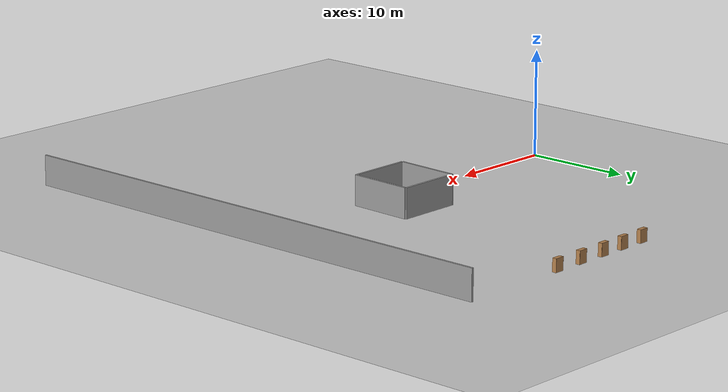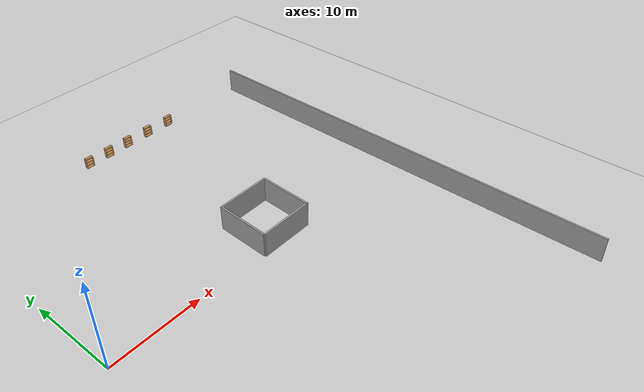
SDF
<sdf version="1.7">
 <world name="default">
  <model name="ground_plane">
   <static>1</static>
   <link name="link">
    <collision name="collision">
     <geometry><plane><normal>0 0 1</normal><size>100 100</size></plane></geometry>
     <surface>
      <contact><collide_bitmask>65535</collide_bitmask></contact>
      <friction><ode><mu>100</mu><mu2>50</mu2></ode></friction>
     </surface>
    </collision>
    <visual name="visual">
     <cast_shadows>0</cast_shadows>
     <geometry><plane><normal>0 0 1</normal><size>100 100</size></plane></geometry>
     <material>
      <script><uri>file://media/materials/scripts/gazebo.material</uri><name>Gazebo/Grey</name></script>
     </material>
    </visual>
   </link>
  </model>
  <model name="grey_wall_long_clone">
   <static>1</static>
   <link name="link">
    <pose>0 0 1.4 0 -0 0</pose>
    <collision name="collision"><geometry><box><size>50 0.2 2.8</size></box></geometry></collision>
    <visual name="visual">
     <cast_shadows>0</cast_shadows>
     <geometry><box><size>50 0.2 2.8</size></box></geometry>
     <material>
      <script>
       <uri>model://grey_wall_long/materials/scripts</uri>
       <uri>model://grey_wall_long/materials/textures</uri>
       <name>vrc/grey_wall_long</name>
      </script>
     </material>
    </visual>
   </link>
   <pose>37.6995 -0.475096 0 0 0 -1.56707</pose>
  </model>
  <model name="grey_wall_media_clone_2_clone">
   <static>1</static>
   <link name="link">
    <pose>0 0 1.4 0 -0 0</pose>
    <collision name="collision"><geometry><box><size>6 0.2 2.8</size></box></geometry></collision>
    <visual name="visual">
     <cast_shadows>0</cast_shadows>
     <geometry><box><size>6 0.2 2.8</size></box></geometry>
     <material>
      <script>
       <uri>model://grey_wall_media/materials/scripts</uri>
       <uri>model://grey_wall_media/materials/textures</uri>
       <name>vrc/grey_wall_media</name>
      </script>
     </material>
    </visual>
   </link>
   <pose>20.7771 -0.668211 0.00987 0 -0 0</pose>
  </model>
  <model name="grey_wall_media_clone_2_clone_clone">
   <static>1</static>
   <link name="link">
    <pose>0 0 1.4 0 -0 0</pose>
    <collision name="collision"><geometry><box><size>6 0.2 2.8</size></box></geometry></collision>
    <visual name="visual">
     <cast_shadows>0</cast_shadows>
     <geometry><box><size>6 0.2 2.8</size></box></geometry>
     <material>
      <script>
       <uri>model://grey_wall_media/materials/scripts</uri>
       <uri>model://grey_wall_media/materials/textures</uri>
       <name>vrc/grey_wall_media</name>
      </script>
     </material>
    </visual>
   </link>
   <pose>20.9663 5.32207 0.00987 0 -0 0</pose>
  </model>
  <model name="grey_wall_media_clone_2_clone_clone_0">
   <static>1</static>
   <link name="link">
    <pose>0 0 1.4 0 -0 0</pose>
    <collision name="collision"><geometry><box><size>6 0.2 2.8</size></box></geometry></collision>
    <visual name="visual">
     <cast_shadows>0</cast_shadows>
     <geometry><box><size>6 0.2 2.8</size></box></geometry>
     <material>
      <script>
       <uri>model://grey_wall_media/materials/scripts</uri>
       <uri>model://grey_wall_media/materials/textures</uri>
       <name>vrc/grey_wall_media</name>
      </script>
     </material>
    </visual>
   </link>
   <pose>17.8444 2.39168 0.00987 0 0 -1.60343</pose>
  </model>
  <model name="grey_wall_media_clone_2_clone_clone_0_clone">
   <static>1</static>
   <link name="link">
    <pose>0 0 1.4 0 -0 0</pose>
    <collision name="collision"><geometry><box><size>6 0.2 2.8</size></box></geometry></collision>
    <visual name="visual">
     <cast_shadows>0</cast_shadows>
     <geometry><box><size>6 0.2 2.8</size></box></geometry>
     <material>
      <script>
       <uri>model://grey_wall_media/materials/scripts</uri>
       <uri>model://grey_wall_media/materials/textures</uri>
       <name>vrc/grey_wall_media</name>
      </script>
     </material>
    </visual>
   </link>
   <pose>23.857 2.28002 0.00987 0 0 -1.60343</pose>
  </model>
  <model name="Bookshelf_0">
   <static>1</static>
   <link name="link">
    <inertial><mass>1</mass></inertial>
    <collision name="back">
     <pose>0 0.005 0.6 0 -0 0</pose>
     <geometry><box><size>0.9 0.01 1.2</size></box></geometry>
    </collision>
    <visual name="visual1">
     <pose>0 0.005 0.6 0 -0 0</pose>
     <geometry><box><size>0.9 0.01 1.2</size></box></geometry>
     <material>
      <diffuse>1 1 1 1</diffuse>
      <script><uri>file://media/materials/scripts/gazebo.material</uri><name>Gazebo/Wood</name></script>
      <pbr><metal><albedo_map>model://Bookshelf/bookshelf_diffuse.jpg</albedo_map></metal></pbr>
     </material>
    </visual>
    <collision name="left_side">
     <pose>0.45 -0.195 0.6 0 -0 0</pose>
     <geometry><box><size>0.02 0.4 1.2</size></box></geometry>
    </collision>
    <visual name="visual2">
     <pose>0.45 -0.195 0.6 0 -0 0</pose>
     <geometry><box><size>0.02 0.4 1.2</size></box></geometry>
     <material>
      <diffuse>1 1 1 1</diffuse>
      <script><uri>file://media/materials/scripts/gazebo.material</uri><name>Gazebo/Wood</name></script>
      <pbr><metal><albedo_map>model://Bookshelf/bookshelf_diffuse.jpg</albedo_map></metal></pbr>
     </material>
    </visual>
    <collision name="right_side">
     <pose>-0.45 -0.195 0.6 0 -0 0</pose>
     <geometry><box><size>0.02 0.4 1.2</size></box></geometry>
    </collision>
    <visual name="visual3">
     <pose>-0.45 -0.195 0.6 0 -0 0</pose>
     <geometry><box><size>0.02 0.4 1.2</size></box></geometry>
     <material>
      <diffuse>1 1 1 1</diffuse>
      <script><uri>file://media/materials/scripts/gazebo.material</uri><name>Gazebo/Wood</name></script>
      <pbr><metal><albedo_map>model://Bookshelf/bookshelf_diffuse.jpg</albedo_map></metal></pbr>
     </material>
    </visual>
    <collision name="bottom">
     <pose>0 -0.195 0.03 0 -0 0</pose>
     <geometry><box><size>0.88 0.4 0.06</size></box></geometry>
    </collision>
    <visual name="visual4">
     <pose>0 -0.195 0.03 0 -0 0</pose>
     <geometry><box><size>0.88 0.4 0.06</size></box></geometry>
     <material>
      <diffuse>1 1 1 1</diffuse>
      <script><uri>file://media/materials/scripts/gazebo.material</uri><name>Gazebo/Wood</name></script>
      <pbr><metal><albedo_map>model://Bookshelf/bookshelf_diffuse.jpg</albedo_map></metal></pbr>
     </material>
    </visual>
    <collision name="top">
     <pose>0 -0.195 1.19 0 -0 0</pose>
     <geometry><box><size>0.88 0.4 0.02</size></box></geometry>
    </collision>
    <visual name="visual5">
     <pose>0 -0.195 1.19 0 -0 0</pose>
     <geometry><box><size>0.88 0.4 0.02</size></box></geometry>
     <material>
      <diffuse>1 1 1 1</diffuse>
      <script><uri>file://media/materials/scripts/gazebo.material</uri><name>Gazebo/Wood</name></script>
      <pbr><metal><albedo_map>model://Bookshelf/bookshelf_diffuse.jpg</albedo_map></metal></pbr>
     </material>
    </visual>
    <collision name="low_shelf">
     <pose>0 -0.195 0.43 0 -0 0</pose>
     <geometry><box><size>0.88 0.4 0.02</size></box></geometry>
    </collision>
    <visual name="visual6">
     <pose>0 -0.195 0.43 0 -0 0</pose>
     <geometry><box><size>0.88 0.4 0.02</size></box></geometry>
     <material>
      <diffuse>1 1 1 1</diffuse>
      <script><uri>file://media/materials/scripts/gazebo.material</uri><name>Gazebo/Wood</name></script>
      <pbr><metal><albedo_map>model://Bookshelf/bookshelf_diffuse.jpg</albedo_map></metal></pbr>
     </material>
    </visual>
    <collision name="high_shelf">
     <pose>0 -0.195 0.8 0 -0 0</pose>
     <geometry><box><size>0.88 0.4 0.02</size></box></geometry>
    </collision>
    <visual name="visual7">
     <pose>0 -0.195 0.8 0 -0 0</pose>
     <geometry><box><size>0.88 0.4 0.02</size></box></geometry>
     <material>
      <diffuse>1 1 1 1</diffuse>
      <script><uri>file://media/materials/scripts/gazebo.material</uri><name>Gazebo/Wood</name></script>
      <pbr><metal><albedo_map>model://Bookshelf/bookshelf_diffuse.jpg</albedo_map></metal></pbr>
     </material>
    </visual>
   </link>
   <pose>26.7566 24.5208 0 0 -0 0</pose>
  </model>
  <model name="Bookshelf_0_clone">
   <static>1</static>
   <link name="link">
    <inertial><mass>1</mass></inertial>
    <collision name="back">
     <pose>0 0.005 0.6 0 -0 0</pose>
     <geometry><box><size>0.9 0.01 1.2</size></box></geometry>
    </collision>
    <visual name="visual1">
     <pose>0 0.005 0.6 0 -0 0</pose>
     <geometry><box><size>0.9 0.01 1.2</size></box></geometry>
     <material>
      <diffuse>1 1 1 1</diffuse>
      <script><uri>file://media/materials/scripts/gazebo.material</uri><name>Gazebo/Wood</name></script>
      <pbr><metal><albedo_map>model://Bookshelf/bookshelf_diffuse.jpg</albedo_map></metal></pbr>
     </material>
    </visual>
    <collision name="left_side">
     <pose>0.45 -0.195 0.6 0 -0 0</pose>
     <geometry><box><size>0.02 0.4 1.2</size></box></geometry>
    </collision>
    <visual name="visual2">
     <pose>0.45 -0.195 0.6 0 -0 0</pose>
     <geometry><box><size>0.02 0.4 1.2</size></box></geometry>
     <material>
      <diffuse>1 1 1 1</diffuse>
      <script><uri>file://media/materials/scripts/gazebo.material</uri><name>Gazebo/Wood</name></script>
      <pbr><metal><albedo_map>model://Bookshelf/bookshelf_diffuse.jpg</albedo_map></metal></pbr>
     </material>
    </visual>
    <collision name="right_side">
     <pose>-0.45 -0.195 0.6 0 -0 0</pose>
     <geometry><box><size>0.02 0.4 1.2</size></box></geometry>
    </collision>
    <visual name="visual3">
     <pose>-0.45 -0.195 0.6 0 -0 0</pose>
     <geometry><box><size>0.02 0.4 1.2</size></box></geometry>
     <material>
      <diffuse>1 1 1 1</diffuse>
      <script><uri>file://media/materials/scripts/gazebo.material</uri><name>Gazebo/Wood</name></script>
      <pbr><metal><albedo_map>model://Bookshelf/bookshelf_diffuse.jpg</albedo_map></metal></pbr>
     </material>
    </visual>
    <collision name="bottom">
     <pose>0 -0.195 0.03 0 -0 0</pose>
     <geometry><box><size>0.88 0.4 0.06</size></box></geometry>
    </collision>
    <visual name="visual4">
     <pose>0 -0.195 0.03 0 -0 0</pose>
     <geometry><box><size>0.88 0.4 0.06</size></box></geometry>
     <material>
      <diffuse>1 1 1 1</diffuse>
      <script><uri>file://media/materials/scripts/gazebo.material</uri><name>Gazebo/Wood</name></script>
      <pbr><metal><albedo_map>model://Bookshelf/bookshelf_diffuse.jpg</albedo_map></metal></pbr>
     </material>
    </visual>
    <collision name="top">
     <pose>0 -0.195 1.19 0 -0 0</pose>
     <geometry><box><size>0.88 0.4 0.02</size></box></geometry>
    </collision>
    <visual name="visual5">
     <pose>0 -0.195 1.19 0 -0 0</pose>
     <geometry><box><size>0.88 0.4 0.02</size></box></geometry>
     <material>
      <diffuse>1 1 1 1</diffuse>
      <script><uri>file://media/materials/scripts/gazebo.material</uri><name>Gazebo/Wood</name></script>
      <pbr><metal><albedo_map>model://Bookshelf/bookshelf_diffuse.jpg</albedo_map></metal></pbr>
     </material>
    </visual>
    <collision name="low_shelf">
     <pose>0 -0.195 0.43 0 -0 0</pose>
     <geometry><box><size>0.88 0.4 0.02</size></box></geometry>
    </collision>
    <visual name="visual6">
     <pose>0 -0.195 0.43 0 -0 0</pose>
     <geometry><box><size>0.88 0.4 0.02</size></box></geometry>
     <material>
      <diffuse>1 1 1 1</diffuse>
      <script><uri>file://media/materials/scripts/gazebo.material</uri><name>Gazebo/Wood</name></script>
      <pbr><metal><albedo_map>model://Bookshelf/bookshelf_diffuse.jpg</albedo_map></metal></pbr>
     </material>
    </visual>
    <collision name="high_shelf">
     <pose>0 -0.195 0.8 0 -0 0</pose>
     <geometry><box><size>0.88 0.4 0.02</size></box></geometry>
    </collision>
    <visual name="visual7">
     <pose>0 -0.195 0.8 0 -0 0</pose>
     <geometry><box><size>0.88 0.4 0.02</size></box></geometry>
     <material>
      <diffuse>1 1 1 1</diffuse>
      <script><uri>file://media/materials/scripts/gazebo.material</uri><name>Gazebo/Wood</name></script>
      <pbr><metal><albedo_map>model://Bookshelf/bookshelf_diffuse.jpg</albedo_map></metal></pbr>
     </material>
    </visual>
   </link>
   <pose>23.7282 24.54 0 0 -0 0</pose>
  </model>
  <model name="Bookshelf_0_clone_0">
   <static>1</static>
   <link name="link">
    <inertial><mass>1</mass></inertial>
    <collision name="back">
     <pose>0 0.005 0.6 0 -0 0</pose>
     <geometry><box><size>0.9 0.01 1.2</size></box></geometry>
    </collision>
    <visual name="visual1">
     <pose>0 0.005 0.6 0 -0 0</pose>
     <geometry><box><size>0.9 0.01 1.2</size></box></geometry>
     <material>
      <diffuse>1 1 1 1</diffuse>
      <script><uri>file://media/materials/scripts/gazebo.material</uri><name>Gazebo/Wood</name></script>
      <pbr><metal><albedo_map>model://Bookshelf/bookshelf_diffuse.jpg</albedo_map></metal></pbr>
     </material>
    </visual>
    <collision name="left_side">
     <pose>0.45 -0.195 0.6 0 -0 0</pose>
     <geometry><box><size>0.02 0.4 1.2</size></box></geometry>
    </collision>
    <visual name="visual2">
     <pose>0.45 -0.195 0.6 0 -0 0</pose>
     <geometry><box><size>0.02 0.4 1.2</size></box></geometry>
     <material>
      <diffuse>1 1 1 1</diffuse>
      <script><uri>file://media/materials/scripts/gazebo.material</uri><name>Gazebo/Wood</name></script>
      <pbr><metal><albedo_map>model://Bookshelf/bookshelf_diffuse.jpg</albedo_map></metal></pbr>
     </material>
    </visual>
    <collision name="right_side">
     <pose>-0.45 -0.195 0.6 0 -0 0</pose>
     <geometry><box><size>0.02 0.4 1.2</size></box></geometry>
    </collision>
    <visual name="visual3">
     <pose>-0.45 -0.195 0.6 0 -0 0</pose>
     <geometry><box><size>0.02 0.4 1.2</size></box></geometry>
     <material>
      <diffuse>1 1 1 1</diffuse>
      <script><uri>file://media/materials/scripts/gazebo.material</uri><name>Gazebo/Wood</name></script>
      <pbr><metal><albedo_map>model://Bookshelf/bookshelf_diffuse.jpg</albedo_map></metal></pbr>
     </material>
    </visual>
    <collision name="bottom">
     <pose>0 -0.195 0.03 0 -0 0</pose>
     <geometry><box><size>0.88 0.4 0.06</size></box></geometry>
    </collision>
    <visual name="visual4">
     <pose>0 -0.195 0.03 0 -0 0</pose>
     <geometry><box><size>0.88 0.4 0.06</size></box></geometry>
     <material>
      <diffuse>1 1 1 1</diffuse>
      <script><uri>file://media/materials/scripts/gazebo.material</uri><name>Gazebo/Wood</name></script>
      <pbr><metal><albedo_map>model://Bookshelf/bookshelf_diffuse.jpg</albedo_map></metal></pbr>
     </material>
    </visual>
    <collision name="top">
     <pose>0 -0.195 1.19 0 -0 0</pose>
     <geometry><box><size>0.88 0.4 0.02</size></box></geometry>
    </collision>
    <visual name="visual5">
     <pose>0 -0.195 1.19 0 -0 0</pose>
     <geometry><box><size>0.88 0.4 0.02</size></box></geometry>
     <material>
      <diffuse>1 1 1 1</diffuse>
      <script><uri>file://media/materials/scripts/gazebo.material</uri><name>Gazebo/Wood</name></script>
      <pbr><metal><albedo_map>model://Bookshelf/bookshelf_diffuse.jpg</albedo_map></metal></pbr>
     </material>
    </visual>
    <collision name="low_shelf">
     <pose>0 -0.195 0.43 0 -0 0</pose>
     <geometry><box><size>0.88 0.4 0.02</size></box></geometry>
    </collision>
    <visual name="visual6">
     <pose>0 -0.195 0.43 0 -0 0</pose>
     <geometry><box><size>0.88 0.4 0.02</size></box></geometry>
     <material>
      <diffuse>1 1 1 1</diffuse>
      <script><uri>file://media/materials/scripts/gazebo.material</uri><name>Gazebo/Wood</name></script>
      <pbr><metal><albedo_map>model://Bookshelf/bookshelf_diffuse.jpg</albedo_map></metal></pbr>
     </material>
    </visual>
    <collision name="high_shelf">
     <pose>0 -0.195 0.8 0 -0 0</pose>
     <geometry><box><size>0.88 0.4 0.02</size></box></geometry>
    </collision>
    <visual name="visual7">
     <pose>0 -0.195 0.8 0 -0 0</pose>
     <geometry><box><size>0.88 0.4 0.02</size></box></geometry>
     <material>
      <diffuse>1 1 1 1</diffuse>
      <script><uri>file://media/materials/scripts/gazebo.material</uri><name>Gazebo/Wood</name></script>
      <pbr><metal><albedo_map>model://Bookshelf/bookshelf_diffuse.jpg</albedo_map></metal></pbr>
     </material>
    </visual>
   </link>
   <pose>20.8419 24.5504 0 0 -0 0</pose>
  </model>
  <model name="Bookshelf_0_clone_1">
   <static>1</static>
   <link name="link">
    <inertial><mass>1</mass></inertial>
    <collision name="back">
     <pose>0 0.005 0.6 0 -0 0</pose>
     <geometry><box><size>0.9 0.01 1.2</size></box></geometry>
    </collision>
    <visual name="visual1">
     <pose>0 0.005 0.6 0 -0 0</pose>
     <geometry><box><size>0.9 0.01 1.2</size></box></geometry>
     <material>
      <diffuse>1 1 1 1</diffuse>
      <script><uri>file://media/materials/scripts/gazebo.material</uri><name>Gazebo/Wood</name></script>
      <pbr><metal><albedo_map>model://Bookshelf/bookshelf_diffuse.jpg</albedo_map></metal></pbr>
     </material>
    </visual>
    <collision name="left_side">
     <pose>0.45 -0.195 0.6 0 -0 0</pose>
     <geometry><box><size>0.02 0.4 1.2</size></box></geometry>
    </collision>
    <visual name="visual2">
     <pose>0.45 -0.195 0.6 0 -0 0</pose>
     <geometry><box><size>0.02 0.4 1.2</size></box></geometry>
     <material>
      <diffuse>1 1 1 1</diffuse>
      <script><uri>file://media/materials/scripts/gazebo.material</uri><name>Gazebo/Wood</name></script>
      <pbr><metal><albedo_map>model://Bookshelf/bookshelf_diffuse.jpg</albedo_map></metal></pbr>
     </material>
    </visual>
    <collision name="right_side">
     <pose>-0.45 -0.195 0.6 0 -0 0</pose>
     <geometry><box><size>0.02 0.4 1.2</size></box></geometry>
    </collision>
    <visual name="visual3">
     <pose>-0.45 -0.195 0.6 0 -0 0</pose>
     <geometry><box><size>0.02 0.4 1.2</size></box></geometry>
     <material>
      <diffuse>1 1 1 1</diffuse>
      <script><uri>file://media/materials/scripts/gazebo.material</uri><name>Gazebo/Wood</name></script>
      <pbr><metal><albedo_map>model://Bookshelf/bookshelf_diffuse.jpg</albedo_map></metal></pbr>
     </material>
    </visual>
    <collision name="bottom">
     <pose>0 -0.195 0.03 0 -0 0</pose>
     <geometry><box><size>0.88 0.4 0.06</size></box></geometry>
    </collision>
    <visual name="visual4">
     <pose>0 -0.195 0.03 0 -0 0</pose>
     <geometry><box><size>0.88 0.4 0.06</size></box></geometry>
     <material>
      <diffuse>1 1 1 1</diffuse>
      <script><uri>file://media/materials/scripts/gazebo.material</uri><name>Gazebo/Wood</name></script>
      <pbr><metal><albedo_map>model://Bookshelf/bookshelf_diffuse.jpg</albedo_map></metal></pbr>
     </material>
    </visual>
    <collision name="top">
     <pose>0 -0.195 1.19 0 -0 0</pose>
     <geometry><box><size>0.88 0.4 0.02</size></box></geometry>
    </collision>
    <visual name="visual5">
     <pose>0 -0.195 1.19 0 -0 0</pose>
     <geometry><box><size>0.88 0.4 0.02</size></box></geometry>
     <material>
      <diffuse>1 1 1 1</diffuse>
      <script><uri>file://media/materials/scripts/gazebo.material</uri><name>Gazebo/Wood</name></script>
      <pbr><metal><albedo_map>model://Bookshelf/bookshelf_diffuse.jpg</albedo_map></metal></pbr>
     </material>
    </visual>
    <collision name="low_shelf">
     <pose>0 -0.195 0.43 0 -0 0</pose>
     <geometry><box><size>0.88 0.4 0.02</size></box></geometry>
    </collision>
    <visual name="visual6">
     <pose>0 -0.195 0.43 0 -0 0</pose>
     <geometry><box><size>0.88 0.4 0.02</size></box></geometry>
     <material>
      <diffuse>1 1 1 1</diffuse>
      <script><uri>file://media/materials/scripts/gazebo.material</uri><name>Gazebo/Wood</name></script>
      <pbr><metal><albedo_map>model://Bookshelf/bookshelf_diffuse.jpg</albedo_map></metal></pbr>
     </material>
    </visual>
    <collision name="high_shelf">
     <pose>0 -0.195 0.8 0 -0 0</pose>
     <geometry><box><size>0.88 0.4 0.02</size></box></geometry>
    </collision>
    <visual name="visual7">
     <pose>0 -0.195 0.8 0 -0 0</pose>
     <geometry><box><size>0.88 0.4 0.02</size></box></geometry>
     <material>
      <diffuse>1 1 1 1</diffuse>
      <script><uri>file://media/materials/scripts/gazebo.material</uri><name>Gazebo/Wood</name></script>
      <pbr><metal><albedo_map>model://Bookshelf/bookshelf_diffuse.jpg</albedo_map></metal></pbr>
     </material>
    </visual>
   </link>
   <pose>18.2097 24.5275 0 0 -0 0</pose>
  </model>
  <model name="Bookshelf_0_clone_2">
   <static>1</static>
   <link name="link">
    <inertial><mass>1</mass></inertial>
    <collision name="back">
     <pose>0 0.005 0.6 0 -0 0</pose>
     <geometry><box><size>0.9 0.01 1.2</size></box></geometry>
    </collision>
    <visual name="visual1">
     <pose>0 0.005 0.6 0 -0 0</pose>
     <geometry><box><size>0.9 0.01 1.2</size></box></geometry>
     <material>
      <diffuse>1 1 1 1</diffuse>
      <script><uri>file://media/materials/scripts/gazebo.material</uri><name>Gazebo/Wood</name></script>
      <pbr><metal><albedo_map>model://Bookshelf/bookshelf_diffuse.jpg</albedo_map></metal></pbr>
     </material>
    </visual>
    <collision name="left_side">
     <pose>0.45 -0.195 0.6 0 -0 0</pose>
     <geometry><box><size>0.02 0.4 1.2</size></box></geometry>
    </collision>
    <visual name="visual2">
     <pose>0.45 -0.195 0.6 0 -0 0</pose>
     <geometry><box><size>0.02 0.4 1.2</size></box></geometry>
     <material>
      <diffuse>1 1 1 1</diffuse>
      <script><uri>file://media/materials/scripts/gazebo.material</uri><name>Gazebo/Wood</name></script>
      <pbr><metal><albedo_map>model://Bookshelf/bookshelf_diffuse.jpg</albedo_map></metal></pbr>
     </material>
    </visual>
    <collision name="right_side">
     <pose>-0.45 -0.195 0.6 0 -0 0</pose>
     <geometry><box><size>0.02 0.4 1.2</size></box></geometry>
    </collision>
    <visual name="visual3">
     <pose>-0.45 -0.195 0.6 0 -0 0</pose>
     <geometry><box><size>0.02 0.4 1.2</size></box></geometry>
     <material>
      <diffuse>1 1 1 1</diffuse>
      <script><uri>file://media/materials/scripts/gazebo.material</uri><name>Gazebo/Wood</name></script>
      <pbr><metal><albedo_map>model://Bookshelf/bookshelf_diffuse.jpg</albedo_map></metal></pbr>
     </material>
    </visual>
    <collision name="bottom">
     <pose>0 -0.195 0.03 0 -0 0</pose>
     <geometry><box><size>0.88 0.4 0.06</size></box></geometry>
    </collision>
    <visual name="visual4">
     <pose>0 -0.195 0.03 0 -0 0</pose>
     <geometry><box><size>0.88 0.4 0.06</size></box></geometry>
     <material>
      <diffuse>1 1 1 1</diffuse>
      <script><uri>file://media/materials/scripts/gazebo.material</uri><name>Gazebo/Wood</name></script>
      <pbr><metal><albedo_map>model://Bookshelf/bookshelf_diffuse.jpg</albedo_map></metal></pbr>
     </material>
    </visual>
    <collision name="top">
     <pose>0 -0.195 1.19 0 -0 0</pose>
     <geometry><box><size>0.88 0.4 0.02</size></box></geometry>
    </collision>
    <visual name="visual5">
     <pose>0 -0.195 1.19 0 -0 0</pose>
     <geometry><box><size>0.88 0.4 0.02</size></box></geometry>
     <material>
      <diffuse>1 1 1 1</diffuse>
      <script><uri>file://media/materials/scripts/gazebo.material</uri><name>Gazebo/Wood</name></script>
      <pbr><metal><albedo_map>model://Bookshelf/bookshelf_diffuse.jpg</albedo_map></metal></pbr>
     </material>
    </visual>
    <collision name="low_shelf">
     <pose>0 -0.195 0.43 0 -0 0</pose>
     <geometry><box><size>0.88 0.4 0.02</size></box></geometry>
    </collision>
    <visual name="visual6">
     <pose>0 -0.195 0.43 0 -0 0</pose>
     <geometry><box><size>0.88 0.4 0.02</size></box></geometry>
     <material>
      <diffuse>1 1 1 1</diffuse>
      <script><uri>file://media/materials/scripts/gazebo.material</uri><name>Gazebo/Wood</name></script>
      <pbr><metal><albedo_map>model://Bookshelf/bookshelf_diffuse.jpg</albedo_map></metal></pbr>
     </material>
    </visual>
    <collision name="high_shelf">
     <pose>0 -0.195 0.8 0 -0 0</pose>
     <geometry><box><size>0.88 0.4 0.02</size></box></geometry>
    </collision>
    <visual name="visual7">
     <pose>0 -0.195 0.8 0 -0 0</pose>
     <geometry><box><size>0.88 0.4 0.02</size></box></geometry>
     <material>
      <diffuse>1 1 1 1</diffuse>
      <script><uri>file://media/materials/scripts/gazebo.material</uri><name>Gazebo/Wood</name></script>
      <pbr><metal><albedo_map>model://Bookshelf/bookshelf_diffuse.jpg</albedo_map></metal></pbr>
     </material>
    </visual>
   </link>
   <pose>15.566 24.5124 0 0 -0 0</pose>
  </model>
 </world>
</sdf>
